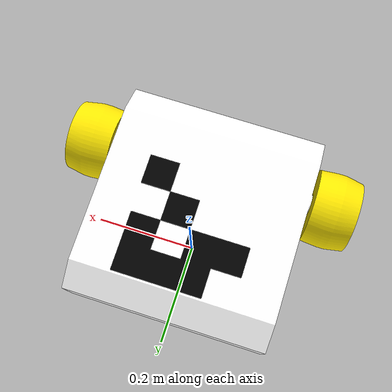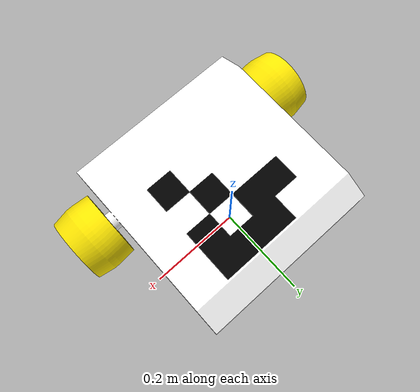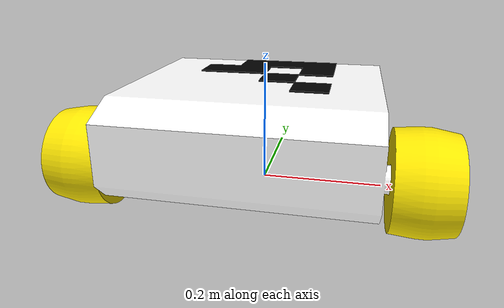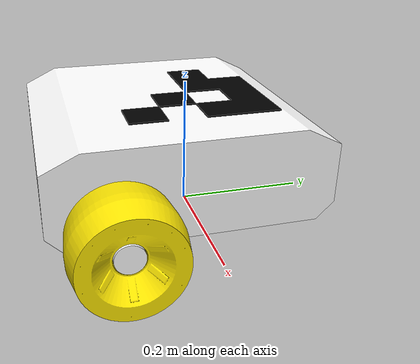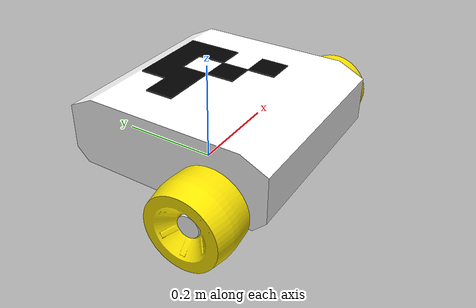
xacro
<?xml version="1.0"?>
<robot xmlns:xacro="http://www.ros.org/wiki/xacro" name="tbor">

  <xacro:property name="base_width" value="0.375"/>
  <xacro:property name="base_height" value="0.1375"/>
  <xacro:property name="pi" value="3.14159"/>
  <xacro:property name="base_len" value="0.4"/>
  <xacro:property name="wheel_radius" value="0.075"/>
  <xacro:property name="base_wheel_gap" value="0.007"/>
  <xacro:property name="wheel_separation" value="0.4"/>
  <xacro:property name="wheel_joint_offset_x" value="0.21"/>
  <xacro:property name="wheel_joint_offset_y" value="0.140673"/>
  <xacro:property name="caster_wheel_radius" value="0.00255"/>

  <xacro:property name="caster_wheel_radius" value="0.0225"/>
  <xacro:property name="caster_wheel_mass" value="0.001"/>
  <xacro:property name="caster_wheel_joint_offset" value="0.038"/>

  <xacro:macro name="cylinder_inertia" params="m r h">
    <inertial>
      <mass value="${m}"/>
      <inertia ixx="${m*(3*r*r+h*h)/12}" ixy = "0" ixz = "0" iyy="${m*(3*r*r+h*h)/12}" iyz = "0" izz="${m*r*r/2}"/>
    </inertial>
  </xacro:macro>

  <xacro:macro name="box_inertia" params="m w h d">
    <inertial>
      <mass value="${m}"/>
      <inertia ixx="${m / 12.0 * (d*d + h*h)}" ixy="0.0" ixz="0.0" iyy="${m / 12.0 * (w*w + h*h)}" iyz="0.0" izz="${m / 12.0 * (w*w + d*d)}"/>
    </inertial>
  </xacro:macro>

  <xacro:macro name="sphere_inertia" params="m r">
    <inertial>
      <mass value="${m}"/>
      <inertia ixx="${2.0*m*(r*r)/5.0}" ixy="0.0" ixz="0.0" iyy="${2*m*(r*r)/5}" iyz="0.0" izz="${2.0*m*(r*r)/5.0}"/>
    </inertial>
  </xacro:macro>

  <!--Base Footprint-->
  <link name="base_footprint1">
    <visual>
        <origin xyz="0 0 0" rpy="0 0 0" />
        <geometry>
            <box size="0.001 0.001 0.001" />
        </geometry>
    </visual>
  </link>

  <!--Base link-->
  <link name="chassis">
    <xacro:box_inertia m="5" w="${base_len}" h="${base_width}" d="${base_height}"/>
    <visual>
      <origin xyz="0 0 0" rpy="0 ${pi} 0"/>
      <geometry>
        <mesh filename="/home/jainam/catkin_ws/src/test3/meshes/chassis_x5.dae"/>
      </geometry>
    </visual>
    <collision>
      <origin xyz="0 0 0" rpy="0 ${pi} 0"/>
      <geometry>
        <mesh filename="/home/jainam/catkin_ws/src/test3/meshes/chassis_x5.dae"/>
      </geometry>
    </collision>
  </link>

  <!--base_link to base_footprint Joint-->
  <joint name="base_link_joint" type="fixed">
    <origin xyz="0 0 ${wheel_radius + 0.038441}" rpy="0 0 0" />
    <parent link="base_footprint1"/>
    <child link="chassis" />
  </joint>

    <link name="left_wheel">
      <visual>
        <origin xyz="0 0 0" rpy="0 0 0"/>
        <geometry>
          <mesh filename="/home/jainam/catkin_ws/src/test3/meshes/wheel_x5.dae"/>
        </geometry>
      </visual>
      <collision>
        <origin xyz="0 0 0" rpy="0 0 0"/>
        <geometry>
          <mesh filename="/home/jainam/catkin_ws/src/test3/meshes/wheel_x5.dae"/>
        </geometry>
      </collision>
      <xacro:cylinder_inertia m="5" r="${wheel_radius}" h="0.085"/>
    </link>

    <joint name="left_wheel_joint1" type="continuous">
      <axis xyz="0 1 0" rpy="0 0 0" />
      <parent link="chassis"/>
      <child link="left_wheel"/>
      <origin xyz="${wheel_joint_offset_x} -${wheel_joint_offset_y} -0.038441" rpy="0 0 ${pi/2}"/>
    </joint>

        <link name="right_wheel">
      <visual>
        <origin xyz="0 0 0" rpy="${pi} 0 0"/>
        <geometry>
          <mesh filename="/home/jainam/catkin_ws/src/test3/meshes/wheel_x5.dae"/>
        </geometry>
      </visual>
      <collision>
        <origin xyz="0 0 0" rpy="${pi} 0 0"/>
        <geometry>
          <mesh filename="/home/jainam/catkin_ws/src/test3/meshes/wheel_x5.dae"/>
        </geometry>
      </collision>
      <xacro:cylinder_inertia m="5" r="${wheel_radius}" h="0.085"/>
    </link>

    <joint name="right_wheel_joint1" type="continuous">
      <axis xyz="0 1 0" rpy="0 0 0" />
      <parent link="chassis"/>
      <child link="right_wheel"/>
      <origin xyz="${-wheel_joint_offset_x} -${wheel_joint_offset_y} -0.038441" rpy="0 0 ${pi/2}"/>
    </joint>

  <link name="caster_wheel">
    <visual>
      <origin xyz="0 0 0 " rpy="0 0 0"/>
      <geometry>
        <sphere radius="${caster_wheel_radius}"/>
      </geometry>
    </visual>
    <collision>
      <origin xyz="0 0 0" rpy="0 0 0"/>
      <geometry>
        <sphere radius="${caster_wheel_radius}"/>
      </geometry>
    </collision>
    <xacro:sphere_inertia m="2" r="${caster_wheel_radius}"/>
  </link>

<!--Caster Wheel Joint-->
  <joint name="caster_wheel_joint" type="continuous">
    <axis xyz="0 1 0" rpy="0 0 0" />
    <parent link="chassis"/>
    <child link="caster_wheel"/>
    <origin xyz="0 ${caster_wheel_joint_offset + 0.009} ${-base_height/2 - 0.0225}" rpy="0 0 0"/>
  </joint>

  <link name="aruco_marker">
    <visual>
      <origin xyz="0 0 0" rpy="0 0 0"/>
      <geometry>
        <mesh filename="/home/jainam/catkin_ws/src/test3/meshes/aruco_marker_x5.dae"/>
      </geometry>
    </visual>
    <collision>
      <origin xyz="0 0 0" rpy="0 0 0"/>
      <geometry>
        <mesh filename="/home/jainam/catkin_ws/src/test3/meshes/aruco_marker_x5.dae"/>
      </geometry>
    </collision>
    <xacro:box_inertia m="0.001" w="0.2209" h="0.2209" d="0.0025"/>
  </link>

  <joint name="aruco_marker_joint" type="fixed">
    <parent link="chassis"/>
    <child link="aruco_marker"/>
    <origin xyz="0 0 ${base_height/2 }" rpy="0 0 0"/>
  </joint>

  <gazebo>
    <plugin name="differential_drive_controller" filename="libgazebo_ros_diff_drive.so">
      <alwaysOn>false</alwaysOn>
      <legacyMode>false</legacyMode>
      <updateRate>20</updateRate>
      <leftJoint>left_wheel_joint1</leftJoint>
      <rightJoint>right_wheel_joint1</rightJoint>
      <wheelSeparation>${wheel_separation}</wheelSeparation>
      <wheelDiameter>${wheel_radius * 2}</wheelDiameter>
      <torque>20</torque>
      <commandTopic>/tbot/base_controller/cmd_vel</commandTopic>
      <odometryTopic>/tbot/base_controller/odom</odometryTopic>
      <odometryFrame>odom</odometryFrame>
      <robotBaseFrame>base_footprint1</robotBaseFrame>
    </plugin>
  </gazebo>

</robot>
